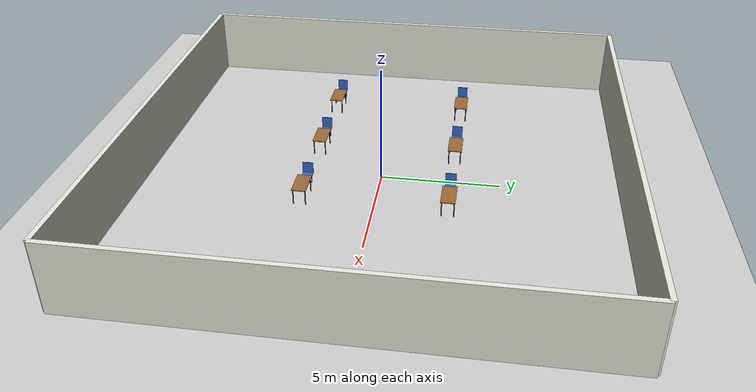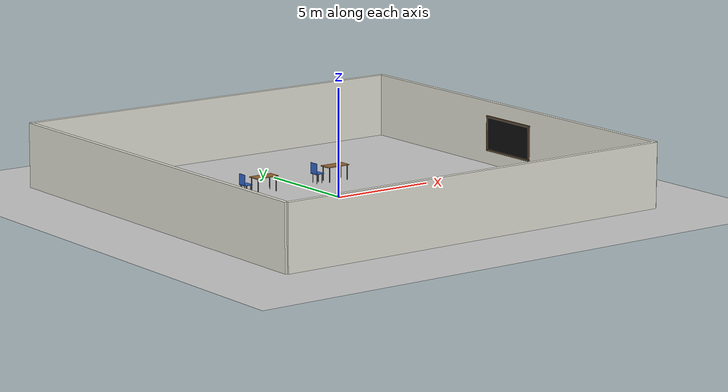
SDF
<?xml version="1.0"?>
<sdf version="1.9">
  <world name="classroom">
    <!-- Physics -->
    <physics name="1ms" type="ignored">
      <max_step_size>0.001</max_step_size>
      <real_time_factor>1.0</real_time_factor>
    </physics>

    <!-- Plugins -->
    <plugin filename="gz-sim-physics-system" name="gz::sim::systems::Physics"></plugin>
    <plugin filename="gz-sim-user-commands-system" name="gz::sim::systems::UserCommands"></plugin>
    <plugin filename="gz-sim-scene-broadcaster-system" name="gz::sim::systems::SceneBroadcaster"></plugin>
    <plugin filename="gz-sim-sensors-system" name="gz::sim::systems::Sensors">
      <render_engine>ogre2</render_engine>
    </plugin>

    <!-- Lighting -->
    <light type="directional" name="sun">
      <cast_shadows>true</cast_shadows>
      <pose>0 0 10 0 0 0</pose>
      <diffuse>0.8 0.8 0.8 1</diffuse>
      <specular>0.2 0.2 0.2 1</specular>
      <attenuation>
        <range>1000</range>
        <constant>0.9</constant>
        <linear>0.01</linear>
        <quadratic>0.001</quadratic>
      </attenuation>
      <direction>-0.5 0.1 -0.9</direction>
    </light>

    <!-- Ambient light -->
    <light type="point" name="ambient_light">
      <pose>0 0 3 0 0 0</pose>
      <diffuse>0.5 0.5 0.5 1</diffuse>
      <specular>0.1 0.1 0.1 1</specular>
      <attenuation>
        <range>20</range>
        <constant>0.5</constant>
        <linear>0.01</linear>
        <quadratic>0.001</quadratic>
      </attenuation>
    </light>

    <!-- Floor -->
    <model name="ground_plane">
      <static>true</static>
      <link name="link">
        <collision name="collision">
          <geometry>
            <plane>
              <normal>0 0 1</normal>
            </plane>
          </geometry>
        </collision>
        <visual name="visual">
          <geometry>
            <plane>
              <normal>0 0 1</normal>
              <size>20 20</size>
            </plane>
          </geometry>
          <material>
            <ambient>0.8 0.8 0.8 1</ambient>
            <diffuse>0.8 0.8 0.8 1</diffuse>
            <specular>0.1 0.1 0.1 1</specular>
          </material>
        </visual>
      </link>
    </model>

    <!-- Classroom Walls -->
    <!-- Back Wall -->
    <model name="back_wall">
      <static>true</static>
      <pose>-10 0 1.5 0 0 0</pose>
      <link name="link">
        <collision name="collision">
          <geometry>
            <box>
              <size>0.2 20 3</size>
            </box>
          </geometry>
        </collision>
        <visual name="visual">
          <geometry>
            <box>
              <size>0.2 20 3</size>
            </box>
          </geometry>
          <material>
            <ambient>0.9 0.9 0.85 1</ambient>
            <diffuse>0.9 0.9 0.85 1</diffuse>
          </material>
        </visual>
      </link>
    </model>

    <!-- Front Wall (with blackboard) -->
    <model name="front_wall">
      <static>true</static>
      <pose>10 0 1.5 0 0 0</pose>
      <link name="link">
        <collision name="collision">
          <geometry>
            <box>
              <size>0.2 20 3</size>
            </box>
          </geometry>
        </collision>
        <visual name="visual">
          <geometry>
            <box>
              <size>0.2 20 3</size>
            </box>
          </geometry>
          <material>
            <ambient>0.9 0.9 0.85 1</ambient>
            <diffuse>0.9 0.9 0.85 1</diffuse>
          </material>
        </visual>
      </link>
    </model>

    <!-- Left Wall (solid) -->
    <model name="left_wall">
      <static>true</static>
      <pose>0 -10 1.5 0 0 0</pose>
      <link name="link">
        <collision name="collision">
          <geometry>
            <box>
              <size>20 0.2 3</size>
            </box>
          </geometry>
        </collision>
        <visual name="visual">
          <geometry>
            <box>
              <size>20 0.2 3</size>
            </box>
          </geometry>
          <material>
            <ambient>0.9 0.9 0.85 1</ambient>
            <diffuse>0.9 0.9 0.85 1</diffuse>
          </material>
        </visual>
      </link>
    </model>

    <!-- Right Wall -->
    <model name="right_wall">
      <static>true</static>
      <pose>0 10 1.5 0 0 0</pose>
      <link name="link">
        <collision name="collision">
          <geometry>
            <box>
              <size>20 0.2 3</size>
            </box>
          </geometry>
        </collision>
        <visual name="visual">
          <geometry>
            <box>
              <size>20 0.2 3</size>
            </box>
          </geometry>
          <material>
            <ambient>0.9 0.9 0.85 1</ambient>
            <diffuse>0.9 0.9 0.85 1</diffuse>
          </material>
        </visual>
      </link>
    </model>

    <!-- Blackboard at the front -->
    <include>
      <uri>model://blackboard</uri>
      <name>blackboard</name>
      <pose>9.8 0 0 0 0 3.14159</pose>
    </include>

    <!-- Desks and Chairs - Row 1 -->
    <include>
      <uri>model://classroom_desk</uri>
      <name>desk1</name>
      <pose>2 -3 0 0 0 0</pose>
    </include>
    <include>
      <uri>model://classroom_chair</uri>
      <name>chair1</name>
      <pose>1 -3 0 0 0 0</pose>
    </include>

    <include>
      <uri>model://classroom_desk</uri>
      <name>desk2</name>
      <pose>2 3 0 0 0 0</pose>
    </include>
    <include>
      <uri>model://classroom_chair</uri>
      <name>chair2</name>
      <pose>1 3 0 0 0 0</pose>
    </include>

    <!-- Desks and Chairs - Row 2 -->
    <include>
      <uri>model://classroom_desk</uri>
      <name>desk3</name>
      <pose>-2 -3 0 0 0 0</pose>
    </include>
    <include>
      <uri>model://classroom_chair</uri>
      <name>chair3</name>
      <pose>-3 -3 0 0 0 0</pose>
    </include>

    <include>
      <uri>model://classroom_desk</uri>
      <name>desk4</name>
      <pose>-2 3 0 0 0 0</pose>
    </include>
    <include>
      <uri>model://classroom_chair</uri>
      <name>chair4</name>
      <pose>-3 3 0 0 0 0</pose>
    </include>

    <!-- Desks and Chairs - Row 3 -->
    <include>
      <uri>model://classroom_desk</uri>
      <name>desk5</name>
      <pose>-6 -3 0 0 0 0</pose>
    </include>
    <include>
      <uri>model://classroom_chair</uri>
      <name>chair5</name>
      <pose>-7 -3 0 0 0 0</pose>
    </include>

    <include>
      <uri>model://classroom_desk</uri>
      <name>desk6</name>
      <pose>-6 3 0 0 0 0</pose>
    </include>
    <include>
      <uri>model://classroom_chair</uri>
      <name>chair6</name>
      <pose>-7 3 0 0 0 0</pose>
    </include>

  </world>
</sdf>

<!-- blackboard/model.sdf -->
<sdf version="1.9">
  <model name="blackboard">
    <static>true</static>
    <link name="link">
      <!-- Blackboard surface -->
      <visual name="board_visual">
        <pose>0 0 1.5 0 0 0</pose>
        <geometry>
          <box>
            <size>0.05 3.0 1.5</size>
          </box>
        </geometry>
        <material>
          <ambient>0.05 0.05 0.05 1</ambient>
          <diffuse>0.05 0.05 0.05 1</diffuse>
        </material>
      </visual>
      <collision name="board_collision">
        <pose>0 0 1.5 0 0 0</pose>
        <geometry>
          <box>
            <size>0.05 3.0 1.5</size>
          </box>
        </geometry>
      </collision>

      <!-- Frame top -->
      <visual name="frame_top_visual">
        <pose>0 0 2.3 0 0 0</pose>
        <geometry>
          <box>
            <size>0.08 3.1 0.08</size>
          </box>
        </geometry>
        <material>
          <ambient>0.4 0.3 0.2 1</ambient>
          <diffuse>0.4 0.3 0.2 1</diffuse>
        </material>
      </visual>

      <!-- Frame bottom -->
      <visual name="frame_bottom_visual">
        <pose>0 0 0.7 0 0 0</pose>
        <geometry>
          <box>
            <size>0.08 3.1 0.08</size>
          </box>
        </geometry>
        <material>
          <ambient>0.4 0.3 0.2 1</ambient>
          <diffuse>0.4 0.3 0.2 1</diffuse>
        </material>
      </visual>

      <!-- Frame left -->
      <visual name="frame_left_visual">
        <pose>0 -1.5 1.5 0 0 0</pose>
        <geometry>
          <box>
            <size>0.08 0.08 1.6</size>
          </box>
        </geometry>
        <material>
          <ambient>0.4 0.3 0.2 1</ambient>
          <diffuse>0.4 0.3 0.2 1</diffuse>
        </material>
      </visual>

      <!-- Frame right -->
      <visual name="frame_right_visual">
        <pose>0 1.5 1.5 0 0 0</pose>
        <geometry>
          <box>
            <size>0.08 0.08 1.6</size>
          </box>
        </geometry>
        <material>
          <ambient>0.4 0.3 0.2 1</ambient>
          <diffuse>0.4 0.3 0.2 1</diffuse>
        </material>
      </visual>
    </link>
  </model>
</sdf>

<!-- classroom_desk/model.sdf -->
<sdf version="1.9">
  <model name="classroom_desk">
    <static>true</static>
    <link name="link">
      <!-- Desktop -->
      <visual name="desktop_visual">
        <pose>0 0 0.7 0 0 0</pose>
        <geometry>
          <box>
            <size>1.2 0.6 0.03</size>
          </box>
        </geometry>
        <material>
          <ambient>0.6 0.4 0.2 1</ambient>
          <diffuse>0.6 0.4 0.2 1</diffuse>
        </material>
      </visual>
      <collision name="desktop_collision">
        <pose>0 0 0.7 0 0 0</pose>
        <geometry>
          <box>
            <size>1.2 0.6 0.03</size>
          </box>
        </geometry>
      </collision>

      <!-- Leg 1 -->
      <visual name="leg1_visual">
        <pose>0.5 0.25 0.35 0 0 0</pose>
        <geometry>
          <cylinder>
            <radius>0.02</radius>
            <length>0.7</length>
          </cylinder>
        </geometry>
        <material>
          <ambient>0.3 0.3 0.3 1</ambient>
          <diffuse>0.3 0.3 0.3 1</diffuse>
        </material>
      </visual>
      <collision name="leg1_collision">
        <pose>0.5 0.25 0.35 0 0 0</pose>
        <geometry>
          <cylinder>
            <radius>0.02</radius>
            <length>0.7</length>
          </cylinder>
        </geometry>
      </collision>

      <!-- Leg 2 -->
      <visual name="leg2_visual">
        <pose>0.5 -0.25 0.35 0 0 0</pose>
        <geometry>
          <cylinder>
            <radius>0.02</radius>
            <length>0.7</length>
          </cylinder>
        </geometry>
        <material>
          <ambient>0.3 0.3 0.3 1</ambient>
          <diffuse>0.3 0.3 0.3 1</diffuse>
        </material>
      </visual>
      <collision name="leg2_collision">
        <pose>0.5 -0.25 0.35 0 0 0</pose>
        <geometry>
          <cylinder>
            <radius>0.02</radius>
            <length>0.7</length>
          </cylinder>
        </geometry>
      </collision>

      <!-- Leg 3 -->
      <visual name="leg3_visual">
        <pose>-0.5 0.25 0.35 0 0 0</pose>
        <geometry>
          <cylinder>
            <radius>0.02</radius>
            <length>0.7</length>
          </cylinder>
        </geometry>
        <material>
          <ambient>0.3 0.3 0.3 1</ambient>
          <diffuse>0.3 0.3 0.3 1</diffuse>
        </material>
      </visual>
      <collision name="leg3_collision">
        <pose>-0.5 0.25 0.35 0 0 0</pose>
        <geometry>
          <cylinder>
            <radius>0.02</radius>
            <length>0.7</length>
          </cylinder>
        </geometry>
      </collision>

      <!-- Leg 4 -->
      <visual name="leg4_visual">
        <pose>-0.5 -0.25 0.35 0 0 0</pose>
        <geometry>
          <cylinder>
            <radius>0.02</radius>
            <length>0.7</length>
          </cylinder>
        </geometry>
        <material>
          <ambient>0.3 0.3 0.3 1</ambient>
          <diffuse>0.3 0.3 0.3 1</diffuse>
        </material>
      </visual>
      <collision name="leg4_collision">
        <pose>-0.5 -0.25 0.35 0 0 0</pose>
        <geometry>
          <cylinder>
            <radius>0.02</radius>
            <length>0.7</length>
          </cylinder>
        </geometry>
      </collision>
    </link>
  </model>
</sdf>

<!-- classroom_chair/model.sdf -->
<sdf version="1.9">
  <model name="classroom_chair">
    <static>true</static>
    <link name="link">
      <!-- Seat -->
      <visual name="seat_visual">
        <pose>0 0 0.45 0 0 0</pose>
        <geometry>
          <box>
            <size>0.45 0.45 0.03</size>
          </box>
        </geometry>
        <material>
          <ambient>0.2 0.4 0.8 1</ambient>
          <diffuse>0.2 0.4 0.8 1</diffuse>
        </material>
      </visual>
      <collision name="seat_collision">
        <pose>0 0 0.45 0 0 0</pose>
        <geometry>
          <box>
            <size>0.45 0.45 0.03</size>
          </box>
        </geometry>
      </collision>

      <!-- Backrest -->
      <visual name="backrest_visual">
        <pose>-0.2 0 0.7 0 0 0</pose>
        <geometry>
          <box>
            <size>0.03 0.45 0.5</size>
          </box>
        </geometry>
        <material>
          <ambient>0.2 0.4 0.8 1</ambient>
          <diffuse>0.2 0.4 0.8 1</diffuse>
        </material>
      </visual>
      <collision name="backrest_collision">
        <pose>-0.2 0 0.7 0 0 0</pose>
        <geometry>
          <box>
            <size>0.03 0.45 0.5</size>
          </box>
        </geometry>
      </collision>

      <!-- Leg 1 -->
      <visual name="leg1_visual">
        <pose>0.15 0.15 0.225 0 0 0</pose>
        <geometry>
          <cylinder>
            <radius>0.015</radius>
            <length>0.45</length>
          </cylinder>
        </geometry>
        <material>
          <ambient>0.3 0.3 0.3 1</ambient>
          <diffuse>0.3 0.3 0.3 1</diffuse>
        </material>
      </visual>
      <collision name="leg1_collision">
        <pose>0.15 0.15 0.225 0 0 0</pose>
        <geometry>
          <cylinder>
            <radius>0.015</radius>
            <length>0.45</length>
          </cylinder>
        </geometry>
      </collision>

      <!-- Leg 2 -->
      <visual name="leg2_visual">
        <pose>0.15 -0.15 0.225 0 0 0</pose>
        <geometry>
          <cylinder>
            <radius>0.015</radius>
            <length>0.45</length>
          </cylinder>
        </geometry>
        <material>
          <ambient>0.3 0.3 0.3 1</ambient>
          <diffuse>0.3 0.3 0.3 1</diffuse>
        </material>
      </visual>
      <collision name="leg2_collision">
        <pose>0.15 -0.15 0.225 0 0 0</pose>
        <geometry>
          <cylinder>
            <radius>0.015</radius>
            <length>0.45</length>
          </cylinder>
        </geometry>
      </collision>

      <!-- Leg 3 -->
      <visual name="leg3_visual">
        <pose>-0.15 0.15 0.225 0 0 0</pose>
        <geometry>
          <cylinder>
            <radius>0.015</radius>
            <length>0.45</length>
          </cylinder>
        </geometry>
        <material>
          <ambient>0.3 0.3 0.3 1</ambient>
          <diffuse>0.3 0.3 0.3 1</diffuse>
        </material>
      </visual>
      <collision name="leg3_collision">
        <pose>-0.15 0.15 0.225 0 0 0</pose>
        <geometry>
          <cylinder>
            <radius>0.015</radius>
            <length>0.45</length>
          </cylinder>
        </geometry>
      </collision>

      <!-- Leg 4 -->
      <visual name="leg4_visual">
        <pose>-0.15 -0.15 0.225 0 0 0</pose>
        <geometry>
          <cylinder>
            <radius>0.015</radius>
            <length>0.45</length>
          </cylinder>
        </geometry>
        <material>
          <ambient>0.3 0.3 0.3 1</ambient>
          <diffuse>0.3 0.3 0.3 1</diffuse>
        </material>
      </visual>
      <collision name="leg4_collision">
        <pose>-0.15 -0.15 0.225 0 0 0</pose>
        <geometry>
          <cylinder>
            <radius>0.015</radius>
            <length>0.45</length>
          </cylinder>
        </geometry>
      </collision>
    </link>
  </model>
</sdf>
